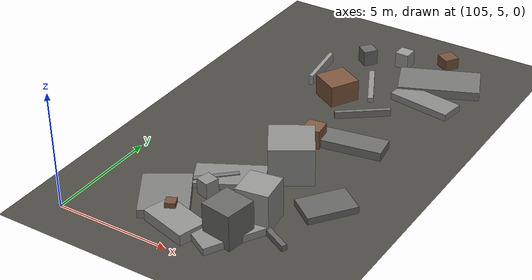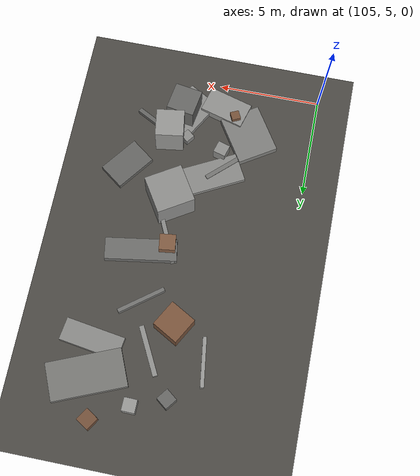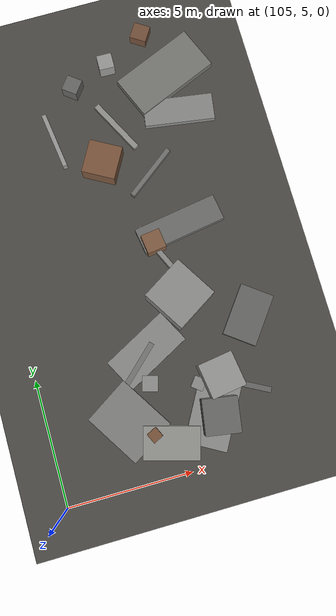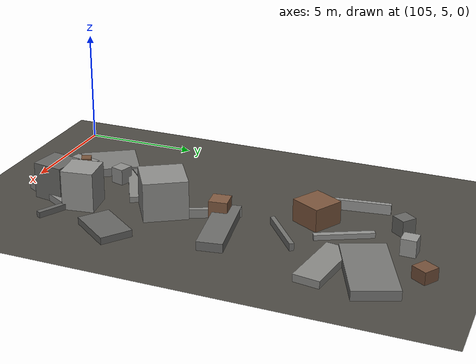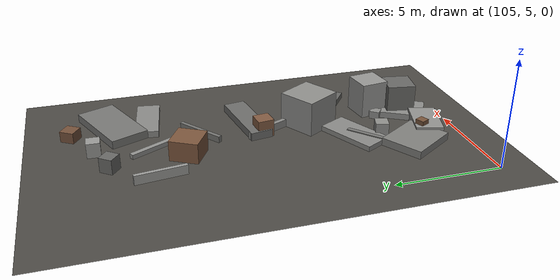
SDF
<sdf version="1.6">
 <world name="navitas_arena">
  <model name="ground_plane">
   <static>true</static>
   <link name="link">
    <collision name="collision">
     <geometry><plane><normal>0 0 1</normal><size>400 400</size></plane></geometry>
     <surface><friction><ode><mu>0.800</mu><mu2>0.800</mu2></ode></friction></surface>
    </collision>
    <visual name="visual">
     <cast_shadows>false</cast_shadows>
     <geometry><plane><normal>0 0 1</normal><size>400 400</size></plane></geometry>
     <material><ambient>0.300 0.290 0.270 1</ambient><diffuse>0.300 0.290 0.270 1</diffuse></material>
    </visual>
   </link>
  </model>
  <model name="deb_zor_31">
   <static>true</static>
   <pose>108.155 7.509 0.185 0 0 2.138</pose>
   <link name="link">
    <collision name="col"><geometry><box><size>2.458 2.010 0.370</size></box></geometry></collision>
    <visual name="vis">
     <geometry><box><size>2.458 2.010 0.370</size></box></geometry>
     <material><ambient>0.50 0.50 0.49 1</ambient><diffuse>0.50 0.50 0.49 1</diffuse></material>
    </visual>
   </link>
  </model>
  <model name="deb_zor_33">
   <static>true</static>
   <pose>113.335 20.824 0.197 0 0 0.398</pose>
   <link name="link">
    <collision name="col"><geometry><box><size>3.581 1.820 0.395</size></box></geometry></collision>
    <visual name="vis">
     <geometry><box><size>3.581 1.820 0.395</size></box></geometry>
     <material><ambient>0.47 0.47 0.46 1</ambient><diffuse>0.47 0.47 0.46 1</diffuse></material>
    </visual>
   </link>
  </model>
  <model name="deb_zor_53">
   <static>true</static>
   <pose>111.073 21.815 0.354 0 0 3.122</pose>
   <link name="link">
    <collision name="col"><geometry><box><size>0.627 0.627 0.708</size></box></geometry></collision>
    <visual name="vis">
     <geometry><box><size>0.627 0.627 0.708</size></box></geometry>
     <material><ambient>0.60 0.60 0.59 1</ambient><diffuse>0.60 0.60 0.59 1</diffuse></material>
    </visual>
   </link>
  </model>
  <model name="deb_zor_66">
   <static>true</static>
   <pose>111.570 6.839 0.781 0 0 1.410</pose>
   <link name="link">
    <collision name="col"><geometry><box><size>1.356 1.356 1.561</size></box></geometry></collision>
    <visual name="vis">
     <geometry><box><size>1.356 1.356 1.561</size></box></geometry>
     <material><ambient>0.41 0.41 0.40 1</ambient><diffuse>0.41 0.41 0.40 1</diffuse></material>
    </visual>
   </link>
  </model>
  <model name="deb_zor_94">
   <static>true</static>
   <pose>109.320 8.694 0.350 0 0 2.861</pose>
   <link name="link">
    <collision name="col"><geometry><box><size>0.610 0.610 0.700</size></box></geometry></collision>
    <visual name="vis">
     <geometry><box><size>0.610 0.610 0.700</size></box></geometry>
     <material><ambient>0.56 0.56 0.55 1</ambient><diffuse>0.56 0.56 0.55 1</diffuse></material>
    </visual>
   </link>
  </model>
  <model name="deb_zor_95">
   <static>true</static>
   <pose>108.855 9.290 0.147 0 0 0.753</pose>
   <link name="link">
    <collision name="col"><geometry><box><size>2.604 0.218 0.294</size></box></geometry></collision>
    <visual name="vis">
     <geometry><box><size>2.604 0.218 0.294</size></box></geometry>
     <material><ambient>0.46 0.46 0.45 1</ambient><diffuse>0.46 0.46 0.45 1</diffuse></material>
    </visual>
   </link>
  </model>
  <model name="deb_zor_112">
   <static>true</static>
   <pose>109.487 21.214 0.352 0 0 0.914</pose>
   <link name="link">
    <collision name="col"><geometry><box><size>0.647 0.647 0.704</size></box></geometry></collision>
    <visual name="vis">
     <geometry><box><size>0.647 0.647 0.704</size></box></geometry>
     <material><ambient>0.41 0.41 0.40 1</ambient><diffuse>0.41 0.41 0.40 1</diffuse></material>
    </visual>
   </link>
  </model>
  <model name="deb_zor_147">
   <static>true</static>
   <pose>109.523 9.943 0.125 0 0 0.487</pose>
   <link name="link">
    <collision name="col"><geometry><box><size>2.886 1.432 0.249</size></box></geometry></collision>
    <visual name="vis">
     <geometry><box><size>2.886 1.432 0.249</size></box></geometry>
     <material><ambient>0.54 0.54 0.53 1</ambient><diffuse>0.54 0.54 0.53 1</diffuse></material>
    </visual>
   </link>
  </model>
  <model name="deb_zor_160">
   <static>true</static>
   <pose>112.579 7.822 0.125 0 0 2.657</pose>
   <link name="link">
    <collision name="col"><geometry><box><size>2.764 0.223 0.250</size></box></geometry></collision>
    <visual name="vis">
     <geometry><box><size>2.764 0.223 0.250</size></box></geometry>
     <material><ambient>0.40 0.40 0.39 1</ambient><diffuse>0.40 0.40 0.39 1</diffuse></material>
    </visual>
   </link>
  </model>
  <model name="deb_zor_161">
   <static>true</static>
   <pose>111.035 13.687 0.187 0 0 2.001</pose>
   <link name="link">
    <collision name="col"><geometry><box><size>2.372 0.210 0.373</size></box></geometry></collision>
    <visual name="vis">
     <geometry><box><size>2.372 0.210 0.373</size></box></geometry>
     <material><ambient>0.54 0.54 0.53 1</ambient><diffuse>0.54 0.54 0.53 1</diffuse></material>
    </visual>
   </link>
  </model>
  <model name="deb_zor_183">
   <static>true</static>
   <pose>110.798 19.161 0.110 0 0 2.046</pose>
   <link name="link">
    <collision name="col"><geometry><box><size>2.441 0.239 0.219</size></box></geometry></collision>
    <visual name="vis">
     <geometry><box><size>2.441 0.239 0.219</size></box></geometry>
     <material><ambient>0.57 0.57 0.56 1</ambient><diffuse>0.57 0.57 0.56 1</diffuse></material>
    </visual>
   </link>
  </model>
  <model name="deb_zor_211">
   <static>true</static>
   <pose>111.629 16.880 0.153 0 0 0.651</pose>
   <link name="link">
    <collision name="col"><geometry><box><size>2.423 0.188 0.307</size></box></geometry></collision>
    <visual name="vis">
     <geometry><box><size>2.423 0.188 0.307</size></box></geometry>
     <material><ambient>0.45 0.45 0.44 1</ambient><diffuse>0.45 0.45 0.44 1</diffuse></material>
    </visual>
   </link>
  </model>
  <model name="deb_zor_221">
   <static>true</static>
   <pose>109.857 17.744 0.481 0 0 1.059</pose>
   <link name="link">
    <collision name="col"><geometry><box><size>1.360 1.360 0.963</size></box></geometry></collision>
    <visual name="vis">
     <geometry><box><size>1.360 1.360 0.963</size></box></geometry>
     <material><ambient>0.49 0.34 0.24 1</ambient><diffuse>0.49 0.34 0.24 1</diffuse></material>
    </visual>
   </link>
  </model>
  <model name="deb_zor_230">
   <static>true</static>
   <pose>111.369 6.924 0.154 0 0 1.058</pose>
   <link name="link">
    <collision name="col"><geometry><box><size>2.626 1.676 0.308</size></box></geometry></collision>
    <visual name="vis">
     <geometry><box><size>2.626 1.676 0.308</size></box></geometry>
     <material><ambient>0.55 0.55 0.54 1</ambient><diffuse>0.55 0.55 0.54 1</diffuse></material>
    </visual>
   </link>
  </model>
  <model name="deb_zor_236">
   <static>true</static>
   <pose>112.004 8.278 0.851 0 0 0.146</pose>
   <link name="link">
    <collision name="col"><geometry><box><size>1.367 1.367 1.702</size></box></geometry></collision>
    <visual name="vis">
     <geometry><box><size>1.367 1.367 1.702</size></box></geometry>
     <material><ambient>0.59 0.59 0.58 1</ambient><diffuse>0.59 0.59 0.58 1</diffuse></material>
    </visual>
   </link>
  </model>
  <model name="deb_zor_246">
   <static>true</static>
   <pose>113.788 10.222 0.148 0 0 0.930</pose>
   <link name="link">
    <collision name="col"><geometry><box><size>2.119 1.369 0.296</size></box></geometry></collision>
    <visual name="vis">
     <geometry><box><size>2.119 1.369 0.296</size></box></geometry>
     <material><ambient>0.40 0.40 0.39 1</ambient><diffuse>0.40 0.40 0.39 1</diffuse></material>
    </visual>
   </link>
  </model>
  <model name="deb_zor_261">
   <static>true</static>
   <pose>112.817 22.766 0.261 0 0 0.997</pose>
   <link name="link">
    <collision name="col"><geometry><box><size>0.689 0.689 0.522</size></box></geometry></collision>
    <visual name="vis">
     <geometry><box><size>0.689 0.689 0.522</size></box></geometry>
     <material><ambient>0.46 0.32 0.23 1</ambient><diffuse>0.46 0.32 0.23 1</diffuse></material>
    </visual>
   </link>
  </model>
  <model name="deb_zor_288">
   <static>true</static>
   <pose>109.518 6.303 0.239 0 0 2.865</pose>
   <link name="link">
    <collision name="col"><geometry><box><size>2.200 1.286 0.478</size></box></geometry></collision>
    <visual name="vis">
     <geometry><box><size>2.200 1.286 0.478</size></box></geometry>
     <material><ambient>0.57 0.57 0.56 1</ambient><diffuse>0.57 0.57 0.56 1</diffuse></material>
    </visual>
   </link>
  </model>
  <model name="deb_zor_291">
   <static>true</static>
   <pose>113.470 19.134 0.156 0 0 2.992</pose>
   <link name="link">
    <collision name="col"><geometry><box><size>2.889 1.093 0.312</size></box></geometry></collision>
    <visual name="vis">
     <geometry><box><size>2.889 1.093 0.312</size></box></geometry>
     <material><ambient>0.54 0.54 0.53 1</ambient><diffuse>0.54 0.54 0.53 1</diffuse></material>
    </visual>
   </link>
  </model>
  <model name="deb_zor_300">
   <static>true</static>
   <pose>110.949 14.001 0.417 0 0 1.700</pose>
   <link name="link">
    <collision name="col"><geometry><box><size>0.779 0.779 0.835</size></box></geometry></collision>
    <visual name="vis">
     <geometry><box><size>0.779 0.779 0.835</size></box></geometry>
     <material><ambient>0.51 0.36 0.26 1</ambient><diffuse>0.51 0.36 0.26 1</diffuse></material>
    </visual>
   </link>
  </model>
  <model name="deb_zor_317">
   <static>true</static>
   <pose>108.983 6.773 0.351 0 0 2.016</pose>
   <link name="link">
    <collision name="col"><geometry><box><size>0.434 0.434 0.703</size></box></geometry></collision>
    <visual name="vis">
     <geometry><box><size>0.434 0.434 0.703</size></box></geometry>
     <material><ambient>0.47 0.33 0.23 1</ambient><diffuse>0.47 0.33 0.23 1</diffuse></material>
    </visual>
   </link>
  </model>
  <model name="deb_zor_326">
   <static>true</static>
   <pose>112.165 14.468 0.190 0 0 0.157</pose>
   <link name="link">
    <collision name="col"><geometry><box><size>3.468 1.059 0.380</size></box></geometry></collision>
    <visual name="vis">
     <geometry><box><size>3.468 1.059 0.380</size></box></geometry>
     <material><ambient>0.43 0.43 0.42 1</ambient><diffuse>0.43 0.43 0.42 1</diffuse></material>
    </visual>
   </link>
  </model>
  <model name="deb_zor_333">
   <static>true</static>
   <pose>108.187 19.200 0.222 0 0 1.704</pose>
   <link name="link">
    <collision name="col"><geometry><box><size>2.342 0.178 0.443</size></box></geometry></collision>
    <visual name="vis">
     <geometry><box><size>2.342 0.178 0.443</size></box></geometry>
     <material><ambient>0.60 0.60 0.59 1</ambient><diffuse>0.60 0.60 0.59 1</diffuse></material>
    </visual>
   </link>
  </model>
  <model name="deb_zor_335">
   <static>true</static>
   <pose>111.144 8.186 0.185 0 0 2.481</pose>
   <link name="link">
    <collision name="col"><geometry><box><size>0.480 0.480 0.371</size></box></geometry></collision>
    <visual name="vis">
     <geometry><box><size>0.480 0.480 0.371</size></box></geometry>
     <material><ambient>0.55 0.55 0.54 1</ambient><diffuse>0.55 0.55 0.54 1</diffuse></material>
    </visual>
   </link>
  </model>
  <model name="chic_zor_9">
   <static>true</static>
   <pose>111.326 11.633 0.835 0 0 2.128</pose>
   <link name="link">
    <collision name="col"><geometry><box><size>1.866 1.866 1.670</size></box></geometry></collision>
    <visual name="vis">
     <geometry><box><size>1.866 1.866 1.670</size></box></geometry>
     <material><ambient>0.56 0.56 0.55 1</ambient><diffuse>0.56 0.56 0.55 1</diffuse></material>
    </visual>
   </link>
  </model>
 </world>
</sdf>
